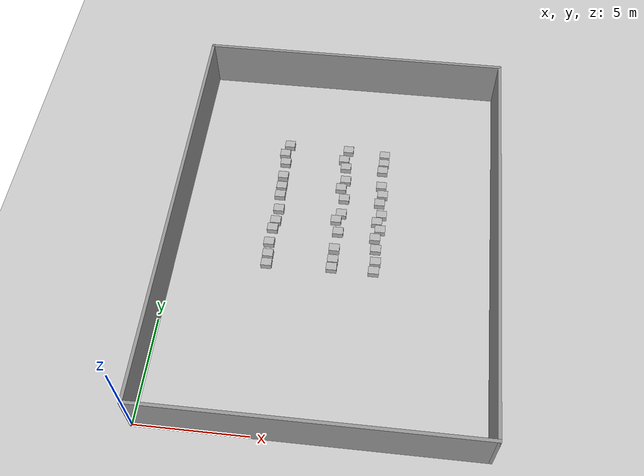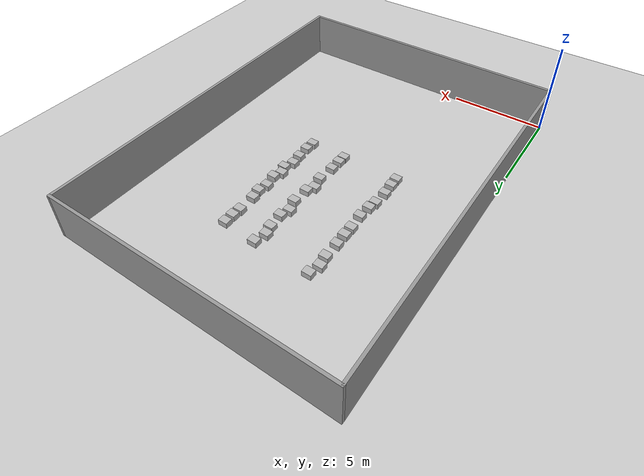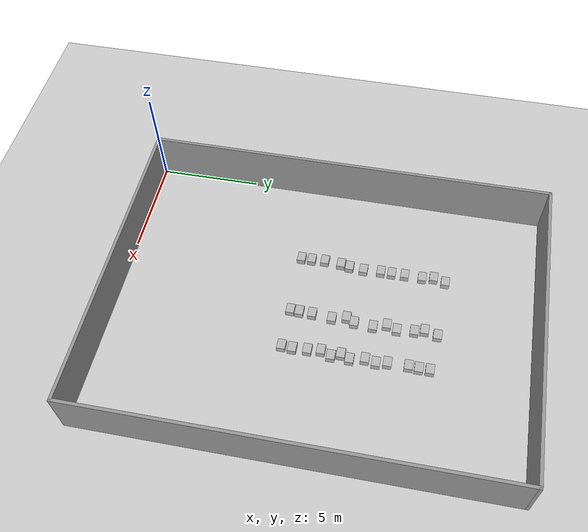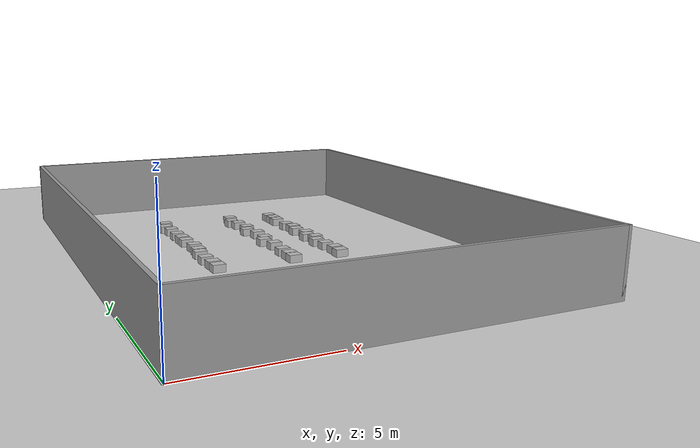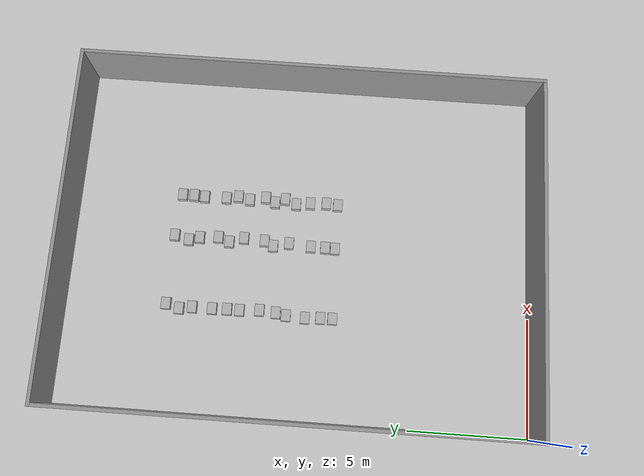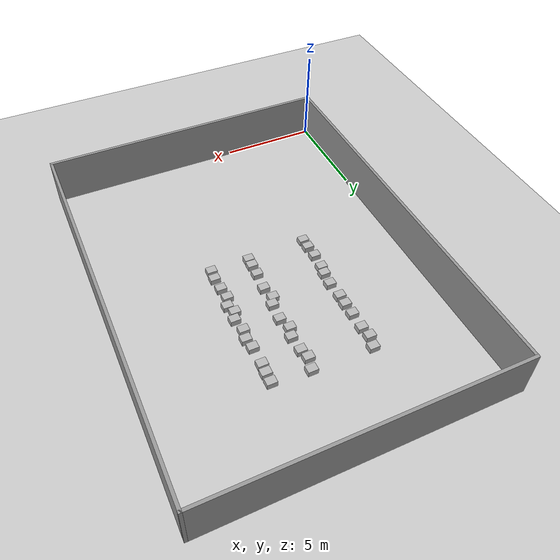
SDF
<sdf version="1.7">
 <world name="default">
  <light name="sun" type="directional">
   <pose>0 0 10 0 -0 0</pose>
   <diffuse>0.8 0.8 0.8 1</diffuse>
   <specular>0.2 0.2 0.2 1</specular>
   <attenuation>
    <range>1000</range>
    <constant>0.9</constant>
    <linear>0.01</linear>
    <quadratic>0.001</quadratic>
   </attenuation>
   <direction>-0.5 0.1 -0.9</direction>
   <spot><inner_angle>0</inner_angle><outer_angle>0</outer_angle><falloff>0</falloff></spot>
  </light>
  <model name="ground_plane">
   <pose>0 0 0 0 -0 1.57</pose>
   <static>1</static>
   <link name="link">
    <collision name="collision">
     <geometry><plane><normal>0 0 1</normal><size>100 100</size></plane></geometry>
     <surface>
      <contact><collide_bitmask>65535</collide_bitmask></contact>
      <friction><ode><mu>100</mu><mu2>50</mu2></ode></friction>
     </surface>
    </collision>
    <visual name="visual">
     <cast_shadows>0</cast_shadows>
     <geometry><plane><normal>0 0 1</normal><size>100 100</size></plane></geometry>
     <material>
      <script><uri>file://media/materials/scripts/gazebo.material</uri><name>Gazebo/Grey</name></script>
     </material>
    </visual>
   </link>
  </model>
  <gravity>0 0 -9.8</gravity>
  <magnetic_field>6e-06 2.3e-05 -4.2e-05</magnetic_field>
  <atmosphere type="adiabatic"/>
  <physics type="ode">
   <max_step_size>0.001</max_step_size>
   <real_time_factor>1</real_time_factor>
   <real_time_update_rate>1000</real_time_update_rate>
  </physics>
  <scene><ambient>0.4 0.4 0.4 1</ambient><background>0.7 0.7 0.7 1</background><shadows>1</shadows></scene>
  <audio><device>default</device></audio>
  <spherical_coordinates>
   <surface_model>EARTH_WGS84</surface_model>
   <latitude_deg>0</latitude_deg>
   <longitude_deg>0</longitude_deg>
   <elevation>0</elevation>
   <heading_deg>0</heading_deg>
  </spherical_coordinates>
  <model name="warehouse_fnal">
   <pose>7.5 10 0 0 -0 0</pose>
   <link name="Wall_10">
    <collision name="Wall_10_Collision">
     <geometry><box><size>15.15 0.15 2.5</size></box></geometry>
     <pose>0 0 1.25 0 -0 0</pose>
    </collision>
    <visual name="Wall_10_Visual">
     <pose>0 0 1.25 0 -0 0</pose>
     <geometry><box><size>15.15 0.15 2.5</size></box></geometry>
     <material>
      <script><uri>file://media/materials/scripts/gazebo.material</uri><name>Gazebo/Grey</name></script>
      <ambient>1 1 1 1</ambient>
     </material>
     <meta><layer>0</layer></meta>
    </visual>
    <pose>0 10 0 0 -0 3.14159</pose>
   </link>
   <link name="Wall_11">
    <collision name="Wall_11_Collision">
     <geometry><box><size>20.15 0.15 2.5</size></box></geometry>
     <pose>0 0 1.25 0 -0 0</pose>
    </collision>
    <visual name="Wall_11_Visual">
     <pose>0 0 1.25 0 -0 0</pose>
     <geometry><box><size>20.15 0.15 2.5</size></box></geometry>
     <material>
      <script><uri>file://media/materials/scripts/gazebo.material</uri><name>Gazebo/Grey</name></script>
      <ambient>1 1 1 1</ambient>
     </material>
     <meta><layer>0</layer></meta>
    </visual>
    <pose>-7.5 0 0 0 -0 -1.5708</pose>
   </link>
   <link name="Wall_8">
    <collision name="Wall_8_Collision">
     <geometry><box><size>15.15 0.15 2.5</size></box></geometry>
     <pose>0 0 1.25 0 -0 0</pose>
    </collision>
    <visual name="Wall_8_Visual">
     <pose>0 0 1.25 0 -0 0</pose>
     <geometry><box><size>15.15 0.15 2.5</size></box></geometry>
     <material>
      <script><uri>file://media/materials/scripts/gazebo.material</uri><name>Gazebo/Grey</name></script>
      <ambient>1 1 1 1</ambient>
     </material>
     <meta><layer>0</layer></meta>
    </visual>
    <pose>0 -10 0 0 -0 0</pose>
   </link>
   <link name="Wall_9">
    <collision name="Wall_9_Collision">
     <geometry><box><size>20.15 0.15 2.5</size></box></geometry>
     <pose>0 0 1.25 0 -0 0</pose>
    </collision>
    <visual name="Wall_9_Visual">
     <pose>0 0 1.25 0 -0 0</pose>
     <geometry><box><size>20.15 0.15 2.5</size></box></geometry>
     <material>
      <script><uri>file://media/materials/scripts/gazebo.material</uri><name>Gazebo/Grey</name></script>
      <ambient>1 1 1 1</ambient>
     </material>
     <meta><layer>0</layer></meta>
    </visual>
    <pose>7.5 0 0 0 -0 1.5708</pose>
   </link>
   <static>1</static>
  </model>
  <model name="cardboard_box">
   <pose>4.43149 8.39533 0.149 0 -0 0</pose>
   <link name="link">
    <inertial>
     <mass>2</mass>
     <inertia>
      <ixx>0.0416667</ixx>
      <ixy>0</ixy>
      <ixz>0</ixz>
      <iyy>0.0566667</iyy>
      <iyz>0</iyz>
      <izz>0.0683333</izz>
     </inertia>
    </inertial>
    <collision name="collision">
     <geometry><box><size>0.5 0.4 0.3</size></box></geometry>
     <surface>
      <friction><ode><mu>1</mu><mu2>1</mu2></ode></friction>
      <contact><ode><kp>1e+07</kp><kd>1</kd><min_depth>0.001</min_depth><max_vel>0.1</max_vel></ode></contact>
     </surface>
    </collision>
    <visual name="visual">
     <pose>0 0 -0.15 0 -0 0</pose>
     <geometry>
      <mesh><uri>model://cardboard_box/meshes/cardboard_box.dae</uri><scale>1.25932 1.00745 0.755591</scale></mesh>
     </geometry>
    </visual>
   </link>
  </model>
  <model name="cardboard_box_clone">
   <pose>4.42529 8.91075 0.149 0 -0 0</pose>
   <link name="link">
    <inertial>
     <mass>2</mass>
     <inertia>
      <ixx>0.0416667</ixx>
      <ixy>0</ixy>
      <ixz>0</ixz>
      <iyy>0.0566667</iyy>
      <iyz>0</iyz>
      <izz>0.0683333</izz>
     </inertia>
    </inertial>
    <collision name="collision">
     <geometry><box><size>0.5 0.4 0.3</size></box></geometry>
     <surface>
      <friction><ode><mu>1</mu><mu2>1</mu2></ode></friction>
      <contact><ode><kp>1e+07</kp><kd>1</kd><min_depth>0.001</min_depth><max_vel>0.1</max_vel></ode></contact>
     </surface>
    </collision>
    <visual name="visual">
     <pose>0 0 -0.15 0 -0 0</pose>
     <geometry>
      <mesh><uri>model://cardboard_box/meshes/cardboard_box.dae</uri><scale>1.25932 1.00745 0.755591</scale></mesh>
     </geometry>
    </visual>
   </link>
  </model>
  <model name="cardboard_box_clone_0">
   <pose>4.38559 9.57242 0.149 0 -0 0</pose>
   <link name="link">
    <inertial>
     <mass>2</mass>
     <inertia>
      <ixx>0.0416667</ixx>
      <ixy>0</ixy>
      <ixz>0</ixz>
      <iyy>0.0566667</iyy>
      <iyz>0</iyz>
      <izz>0.0683333</izz>
     </inertia>
    </inertial>
    <collision name="collision">
     <geometry><box><size>0.5 0.4 0.3</size></box></geometry>
     <surface>
      <friction><ode><mu>1</mu><mu2>1</mu2></ode></friction>
      <contact><ode><kp>1e+07</kp><kd>1</kd><min_depth>0.001</min_depth><max_vel>0.1</max_vel></ode></contact>
     </surface>
    </collision>
    <visual name="visual">
     <pose>0 0 -0.15 0 -0 0</pose>
     <geometry>
      <mesh><uri>model://cardboard_box/meshes/cardboard_box.dae</uri><scale>1.25932 1.00745 0.755591</scale></mesh>
     </geometry>
    </visual>
   </link>
  </model>
  <model name="cardboard_box_clone_1">
   <pose>4.4331 10.3926 0.149 0 -0 0</pose>
   <link name="link">
    <inertial>
     <mass>2</mass>
     <inertia>
      <ixx>0.0416667</ixx>
      <ixy>0</ixy>
      <ixz>0</ixz>
      <iyy>0.0566667</iyy>
      <iyz>0</iyz>
      <izz>0.0683333</izz>
     </inertia>
    </inertial>
    <collision name="collision">
     <geometry><box><size>0.5 0.4 0.3</size></box></geometry>
     <surface>
      <friction><ode><mu>1</mu><mu2>1</mu2></ode></friction>
      <contact><ode><kp>1e+07</kp><kd>1</kd><min_depth>0.001</min_depth><max_vel>0.1</max_vel></ode></contact>
     </surface>
    </collision>
    <visual name="visual">
     <pose>0 0 -0.15 0 -0 0</pose>
     <geometry>
      <mesh><uri>model://cardboard_box/meshes/cardboard_box.dae</uri><scale>1.25932 1.00745 0.755591</scale></mesh>
     </geometry>
    </visual>
   </link>
  </model>
  <model name="cardboard_box_clone_2">
   <pose>4.51999 10.8353 0.149 0 -0 0</pose>
   <link name="link">
    <inertial>
     <mass>2</mass>
     <inertia>
      <ixx>0.0416667</ixx>
      <ixy>0</ixy>
      <ixz>0</ixz>
      <iyy>0.0566667</iyy>
      <iyz>0</iyz>
      <izz>0.0683333</izz>
     </inertia>
    </inertial>
    <collision name="collision">
     <geometry><box><size>0.5 0.4 0.3</size></box></geometry>
     <surface>
      <friction><ode><mu>1</mu><mu2>1</mu2></ode></friction>
      <contact><ode><kp>1e+07</kp><kd>1</kd><min_depth>0.001</min_depth><max_vel>0.1</max_vel></ode></contact>
     </surface>
    </collision>
    <visual name="visual">
     <pose>0 0 -0.15 0 -0 0</pose>
     <geometry>
      <mesh><uri>model://cardboard_box/meshes/cardboard_box.dae</uri><scale>1.25932 1.00745 0.755591</scale></mesh>
     </geometry>
    </visual>
   </link>
  </model>
  <model name="cardboard_box_clone_3">
   <pose>4.57796 11.5407 0.149 0 -0 0</pose>
   <link name="link">
    <inertial>
     <mass>2</mass>
     <inertia>
      <ixx>0.0416667</ixx>
      <ixy>0</ixy>
      <ixz>0</ixz>
      <iyy>0.0566667</iyy>
      <iyz>0</iyz>
      <izz>0.0683333</izz>
     </inertia>
    </inertial>
    <collision name="collision">
     <geometry><box><size>0.5 0.4 0.3</size></box></geometry>
     <surface>
      <friction><ode><mu>1</mu><mu2>1</mu2></ode></friction>
      <contact><ode><kp>1e+07</kp><kd>1</kd><min_depth>0.001</min_depth><max_vel>0.1</max_vel></ode></contact>
     </surface>
    </collision>
    <visual name="visual">
     <pose>0 0 -0.15 0 -0 0</pose>
     <geometry>
      <mesh><uri>model://cardboard_box/meshes/cardboard_box.dae</uri><scale>1.25932 1.00745 0.755591</scale></mesh>
     </geometry>
    </visual>
   </link>
  </model>
  <model name="cardboard_box_clone_4">
   <pose>4.51597 12.3961 0.149 0 -0 0</pose>
   <link name="link">
    <inertial>
     <mass>2</mass>
     <inertia>
      <ixx>0.0416667</ixx>
      <ixy>0</ixy>
      <ixz>0</ixz>
      <iyy>0.0566667</iyy>
      <iyz>0</iyz>
      <izz>0.0683333</izz>
     </inertia>
    </inertial>
    <collision name="collision">
     <geometry><box><size>0.5 0.4 0.3</size></box></geometry>
     <surface>
      <friction><ode><mu>1</mu><mu2>1</mu2></ode></friction>
      <contact><ode><kp>1e+07</kp><kd>1</kd><min_depth>0.001</min_depth><max_vel>0.1</max_vel></ode></contact>
     </surface>
    </collision>
    <visual name="visual">
     <pose>0 0 -0.15 0 -0 0</pose>
     <geometry>
      <mesh><uri>model://cardboard_box/meshes/cardboard_box.dae</uri><scale>1.25932 1.00745 0.755591</scale></mesh>
     </geometry>
    </visual>
   </link>
  </model>
  <model name="cardboard_box_clone_5">
   <pose>4.52274 12.9338 0.149 0 -0 0</pose>
   <link name="link">
    <inertial>
     <mass>2</mass>
     <inertia>
      <ixx>0.0416667</ixx>
      <ixy>0</ixy>
      <ixz>0</ixz>
      <iyy>0.0566667</iyy>
      <iyz>0</iyz>
      <izz>0.0683333</izz>
     </inertia>
    </inertial>
    <collision name="collision">
     <geometry><box><size>0.5 0.4 0.3</size></box></geometry>
     <surface>
      <friction><ode><mu>1</mu><mu2>1</mu2></ode></friction>
      <contact><ode><kp>1e+07</kp><kd>1</kd><min_depth>0.001</min_depth><max_vel>0.1</max_vel></ode></contact>
     </surface>
    </collision>
    <visual name="visual">
     <pose>0 0 -0.15 0 -0 0</pose>
     <geometry>
      <mesh><uri>model://cardboard_box/meshes/cardboard_box.dae</uri><scale>1.25932 1.00745 0.755591</scale></mesh>
     </geometry>
    </visual>
   </link>
  </model>
  <model name="cardboard_box_clone_6">
   <pose>4.50727 13.5777 0.149 0 -0 0</pose>
   <link name="link">
    <inertial>
     <mass>2</mass>
     <inertia>
      <ixx>0.0416667</ixx>
      <ixy>0</ixy>
      <ixz>0</ixz>
      <iyy>0.0566667</iyy>
      <iyz>0</iyz>
      <izz>0.0683333</izz>
     </inertia>
    </inertial>
    <collision name="collision">
     <geometry><box><size>0.5 0.4 0.3</size></box></geometry>
     <surface>
      <friction><ode><mu>1</mu><mu2>1</mu2></ode></friction>
      <contact><ode><kp>1e+07</kp><kd>1</kd><min_depth>0.001</min_depth><max_vel>0.1</max_vel></ode></contact>
     </surface>
    </collision>
    <visual name="visual">
     <pose>0 0 -0.15 0 -0 0</pose>
     <geometry>
      <mesh><uri>model://cardboard_box/meshes/cardboard_box.dae</uri><scale>1.25932 1.00745 0.755591</scale></mesh>
     </geometry>
    </visual>
   </link>
  </model>
  <model name="cardboard_box_clone_7">
   <pose>4.51519 14.4402 0.149 0 -0 0</pose>
   <link name="link">
    <inertial>
     <mass>2</mass>
     <inertia>
      <ixx>0.0416667</ixx>
      <ixy>0</ixy>
      <ixz>0</ixz>
      <iyy>0.0566667</iyy>
      <iyz>0</iyz>
      <izz>0.0683333</izz>
     </inertia>
    </inertial>
    <collision name="collision">
     <geometry><box><size>0.5 0.4 0.3</size></box></geometry>
     <surface>
      <friction><ode><mu>1</mu><mu2>1</mu2></ode></friction>
      <contact><ode><kp>1e+07</kp><kd>1</kd><min_depth>0.001</min_depth><max_vel>0.1</max_vel></ode></contact>
     </surface>
    </collision>
    <visual name="visual">
     <pose>0 0 -0.15 0 -0 0</pose>
     <geometry>
      <mesh><uri>model://cardboard_box/meshes/cardboard_box.dae</uri><scale>1.25932 1.00745 0.755591</scale></mesh>
     </geometry>
    </visual>
   </link>
  </model>
  <model name="cardboard_box_clone_8">
   <pose>4.42422 14.9957 0.149 0 -0 0</pose>
   <link name="link">
    <inertial>
     <mass>2</mass>
     <inertia>
      <ixx>0.0416667</ixx>
      <ixy>0</ixy>
      <ixz>0</ixz>
      <iyy>0.0566667</iyy>
      <iyz>0</iyz>
      <izz>0.0683333</izz>
     </inertia>
    </inertial>
    <collision name="collision">
     <geometry><box><size>0.5 0.4 0.3</size></box></geometry>
     <surface>
      <friction><ode><mu>1</mu><mu2>1</mu2></ode></friction>
      <contact><ode><kp>1e+07</kp><kd>1</kd><min_depth>0.001</min_depth><max_vel>0.1</max_vel></ode></contact>
     </surface>
    </collision>
    <visual name="visual">
     <pose>0 0 -0.15 0 -0 0</pose>
     <geometry>
      <mesh><uri>model://cardboard_box/meshes/cardboard_box.dae</uri><scale>1.25932 1.00745 0.755591</scale></mesh>
     </geometry>
    </visual>
   </link>
  </model>
  <model name="cardboard_box_clone_9">
   <pose>4.59192 15.5767 0.149 0 -0 0</pose>
   <link name="link">
    <inertial>
     <mass>2</mass>
     <inertia>
      <ixx>0.0416667</ixx>
      <ixy>0</ixy>
      <ixz>0</ixz>
      <iyy>0.0566667</iyy>
      <iyz>0</iyz>
      <izz>0.0683333</izz>
     </inertia>
    </inertial>
    <collision name="collision">
     <geometry><box><size>0.5 0.4 0.3</size></box></geometry>
     <surface>
      <friction><ode><mu>1</mu><mu2>1</mu2></ode></friction>
      <contact><ode><kp>1e+07</kp><kd>1</kd><min_depth>0.001</min_depth><max_vel>0.1</max_vel></ode></contact>
     </surface>
    </collision>
    <visual name="visual">
     <pose>0 0 -0.15 0 -0 0</pose>
     <geometry>
      <mesh><uri>model://cardboard_box/meshes/cardboard_box.dae</uri><scale>1.25932 1.00745 0.755591</scale></mesh>
     </geometry>
    </visual>
   </link>
  </model>
  <model name="cardboard_box_clone_10">
   <pose>7.5972 14.4243 0.149 0 -0 0</pose>
   <link name="link">
    <inertial>
     <mass>2</mass>
     <inertia>
      <ixx>0.0416667</ixx>
      <ixy>0</ixy>
      <ixz>0</ixz>
      <iyy>0.0566667</iyy>
      <iyz>0</iyz>
      <izz>0.0683333</izz>
     </inertia>
    </inertial>
    <collision name="collision">
     <geometry><box><size>0.5 0.4 0.3</size></box></geometry>
     <surface>
      <friction><ode><mu>1</mu><mu2>1</mu2></ode></friction>
      <contact><ode><kp>1e+07</kp><kd>1</kd><min_depth>0.001</min_depth><max_vel>0.1</max_vel></ode></contact>
     </surface>
    </collision>
    <visual name="visual">
     <pose>0 0 -0.15 0 -0 0</pose>
     <geometry>
      <mesh><uri>model://cardboard_box/meshes/cardboard_box.dae</uri><scale>1.25932 1.00745 0.755591</scale></mesh>
     </geometry>
    </visual>
   </link>
  </model>
  <model name="cardboard_box_clone_11">
   <pose>7.46137 14.8956 0.149 0 -0 0</pose>
   <link name="link">
    <inertial>
     <mass>2</mass>
     <inertia>
      <ixx>0.0416667</ixx>
      <ixy>0</ixy>
      <ixz>0</ixz>
      <iyy>0.0566667</iyy>
      <iyz>0</iyz>
      <izz>0.0683333</izz>
     </inertia>
    </inertial>
    <collision name="collision">
     <geometry><box><size>0.5 0.4 0.3</size></box></geometry>
     <surface>
      <friction><ode><mu>1</mu><mu2>1</mu2></ode></friction>
      <contact><ode><kp>1e+07</kp><kd>1</kd><min_depth>0.001</min_depth><max_vel>0.1</max_vel></ode></contact>
     </surface>
    </collision>
    <visual name="visual">
     <pose>0 0 -0.15 0 -0 0</pose>
     <geometry>
      <mesh><uri>model://cardboard_box/meshes/cardboard_box.dae</uri><scale>1.25932 1.00745 0.755591</scale></mesh>
     </geometry>
    </visual>
   </link>
  </model>
  <model name="cardboard_box_clone_12">
   <pose>7.62638 15.5251 0.149 0 -0 0</pose>
   <link name="link">
    <inertial>
     <mass>2</mass>
     <inertia>
      <ixx>0.0416667</ixx>
      <ixy>0</ixy>
      <ixz>0</ixz>
      <iyy>0.0566667</iyy>
      <iyz>0</iyz>
      <izz>0.0683333</izz>
     </inertia>
    </inertial>
    <collision name="collision">
     <geometry><box><size>0.5 0.4 0.3</size></box></geometry>
     <surface>
      <friction><ode><mu>1</mu><mu2>1</mu2></ode></friction>
      <contact><ode><kp>1e+07</kp><kd>1</kd><min_depth>0.001</min_depth><max_vel>0.1</max_vel></ode></contact>
     </surface>
    </collision>
    <visual name="visual">
     <pose>0 0 -0.15 0 -0 0</pose>
     <geometry>
      <mesh><uri>model://cardboard_box/meshes/cardboard_box.dae</uri><scale>1.25932 1.00745 0.755591</scale></mesh>
     </geometry>
    </visual>
   </link>
  </model>
  <model name="cardboard_box_clone_13">
   <pose>7.66571 13.6032 0.149 0 -0 0</pose>
   <link name="link">
    <inertial>
     <mass>2</mass>
     <inertia>
      <ixx>0.0416667</ixx>
      <ixy>0</ixy>
      <ixz>0</ixz>
      <iyy>0.0566667</iyy>
      <iyz>0</iyz>
      <izz>0.0683333</izz>
     </inertia>
    </inertial>
    <collision name="collision">
     <geometry><box><size>0.5 0.4 0.3</size></box></geometry>
     <surface>
      <friction><ode><mu>1</mu><mu2>1</mu2></ode></friction>
      <contact><ode><kp>1e+07</kp><kd>1</kd><min_depth>0.001</min_depth><max_vel>0.1</max_vel></ode></contact>
     </surface>
    </collision>
    <visual name="visual">
     <pose>0 0 -0.15 0 -0 0</pose>
     <geometry>
      <mesh><uri>model://cardboard_box/meshes/cardboard_box.dae</uri><scale>1.25932 1.00745 0.755591</scale></mesh>
     </geometry>
    </visual>
   </link>
  </model>
  <model name="cardboard_box_clone_14">
   <pose>7.48894 13.1111 0.149 0 -0 0</pose>
   <link name="link">
    <inertial>
     <mass>2</mass>
     <inertia>
      <ixx>0.0416667</ixx>
      <ixy>0</ixy>
      <ixz>0</ixz>
      <iyy>0.0566667</iyy>
      <iyz>0</iyz>
      <izz>0.0683333</izz>
     </inertia>
    </inertial>
    <collision name="collision">
     <geometry><box><size>0.5 0.4 0.3</size></box></geometry>
     <surface>
      <friction><ode><mu>1</mu><mu2>1</mu2></ode></friction>
      <contact><ode><kp>1e+07</kp><kd>1</kd><min_depth>0.001</min_depth><max_vel>0.1</max_vel></ode></contact>
     </surface>
    </collision>
    <visual name="visual">
     <pose>0 0 -0.15 0 -0 0</pose>
     <geometry>
      <mesh><uri>model://cardboard_box/meshes/cardboard_box.dae</uri><scale>1.25932 1.00745 0.755591</scale></mesh>
     </geometry>
    </visual>
   </link>
  </model>
  <model name="cardboard_box_clone_15">
   <pose>7.70269 12.4781 0.149 0 -0 0</pose>
   <link name="link">
    <inertial>
     <mass>2</mass>
     <inertia>
      <ixx>0.0416667</ixx>
      <ixy>0</ixy>
      <ixz>0</ixz>
      <iyy>0.0566667</iyy>
      <iyz>0</iyz>
      <izz>0.0683333</izz>
     </inertia>
    </inertial>
    <collision name="collision">
     <geometry><box><size>0.5 0.4 0.3</size></box></geometry>
     <surface>
      <friction><ode><mu>1</mu><mu2>1</mu2></ode></friction>
      <contact><ode><kp>1e+07</kp><kd>1</kd><min_depth>0.001</min_depth><max_vel>0.1</max_vel></ode></contact>
     </surface>
    </collision>
    <visual name="visual">
     <pose>0 0 -0.15 0 -0 0</pose>
     <geometry>
      <mesh><uri>model://cardboard_box/meshes/cardboard_box.dae</uri><scale>1.25932 1.00745 0.755591</scale></mesh>
     </geometry>
    </visual>
   </link>
  </model>
  <model name="cardboard_box_clone_16">
   <pose>7.64697 11.5723 0.149 0 -0 -0.00205</pose>
   <link name="link">
    <inertial>
     <mass>2</mass>
     <inertia>
      <ixx>0.0416667</ixx>
      <ixy>0</ixy>
      <ixz>0</ixz>
      <iyy>0.0566667</iyy>
      <iyz>0</iyz>
      <izz>0.0683333</izz>
     </inertia>
    </inertial>
    <collision name="collision">
     <geometry><box><size>0.5 0.4 0.3</size></box></geometry>
     <surface>
      <friction><ode><mu>1</mu><mu2>1</mu2></ode></friction>
      <contact><ode><kp>1e+07</kp><kd>1</kd><min_depth>0.001</min_depth><max_vel>0.1</max_vel></ode></contact>
     </surface>
    </collision>
    <visual name="visual">
     <pose>0 0 -0.15 0 -0 0</pose>
     <geometry>
      <mesh><uri>model://cardboard_box/meshes/cardboard_box.dae</uri><scale>1.25932 1.00745 0.755591</scale></mesh>
     </geometry>
    </visual>
   </link>
  </model>
  <model name="cardboard_box_clone_17">
   <pose>7.43684 11.1735 0.149 0 0 -0.002051</pose>
   <link name="link">
    <inertial>
     <mass>2</mass>
     <inertia>
      <ixx>0.0416667</ixx>
      <ixy>0</ixy>
      <ixz>0</ixz>
      <iyy>0.0566667</iyy>
      <iyz>0</iyz>
      <izz>0.0683333</izz>
     </inertia>
    </inertial>
    <collision name="collision">
     <geometry><box><size>0.5 0.4 0.3</size></box></geometry>
     <surface>
      <friction><ode><mu>1</mu><mu2>1</mu2></ode></friction>
      <contact><ode><kp>1e+07</kp><kd>1</kd><min_depth>0.001</min_depth><max_vel>0.1</max_vel></ode></contact>
     </surface>
    </collision>
    <visual name="visual">
     <pose>0 0 -0.15 0 -0 0</pose>
     <geometry>
      <mesh><uri>model://cardboard_box/meshes/cardboard_box.dae</uri><scale>1.25932 1.00745 0.755591</scale></mesh>
     </geometry>
    </visual>
   </link>
  </model>
  <model name="cardboard_box_clone_18">
   <pose>7.60195 10.4918 0.149 0 -0 0</pose>
   <link name="link">
    <inertial>
     <mass>2</mass>
     <inertia>
      <ixx>0.0416667</ixx>
      <ixy>0</ixy>
      <ixz>0</ixz>
      <iyy>0.0566667</iyy>
      <iyz>0</iyz>
      <izz>0.0683333</izz>
     </inertia>
    </inertial>
    <collision name="collision">
     <geometry><box><size>0.5 0.4 0.3</size></box></geometry>
     <surface>
      <friction><ode><mu>1</mu><mu2>1</mu2></ode></friction>
      <contact><ode><kp>1e+07</kp><kd>1</kd><min_depth>0.001</min_depth><max_vel>0.1</max_vel></ode></contact>
     </surface>
    </collision>
    <visual name="visual">
     <pose>0 0 -0.15 0 -0 0</pose>
     <geometry>
      <mesh><uri>model://cardboard_box/meshes/cardboard_box.dae</uri><scale>1.25932 1.00745 0.755591</scale></mesh>
     </geometry>
    </visual>
   </link>
  </model>
  <model name="cardboard_box_clone_19">
   <pose>7.50148 8.47023 0.149 0 -0 0</pose>
   <link name="link">
    <inertial>
     <mass>2</mass>
     <inertia>
      <ixx>0.0416667</ixx>
      <ixy>0</ixy>
      <ixz>0</ixz>
      <iyy>0.0566667</iyy>
      <iyz>0</iyz>
      <izz>0.0683333</izz>
     </inertia>
    </inertial>
    <collision name="collision">
     <geometry><box><size>0.5 0.4 0.3</size></box></geometry>
     <surface>
      <friction><ode><mu>1</mu><mu2>1</mu2></ode></friction>
      <contact><ode><kp>1e+07</kp><kd>1</kd><min_depth>0.001</min_depth><max_vel>0.1</max_vel></ode></contact>
     </surface>
    </collision>
    <visual name="visual">
     <pose>0 0 -0.15 0 -0 0</pose>
     <geometry>
      <mesh><uri>model://cardboard_box/meshes/cardboard_box.dae</uri><scale>1.25932 1.00745 0.755591</scale></mesh>
     </geometry>
    </visual>
   </link>
  </model>
  <model name="cardboard_box_clone_20">
   <pose>7.51788 8.90574 0.149 0 -0 0</pose>
   <link name="link">
    <inertial>
     <mass>2</mass>
     <inertia>
      <ixx>0.0416667</ixx>
      <ixy>0</ixy>
      <ixz>0</ixz>
      <iyy>0.0566667</iyy>
      <iyz>0</iyz>
      <izz>0.0683333</izz>
     </inertia>
    </inertial>
    <collision name="collision">
     <geometry><box><size>0.5 0.4 0.3</size></box></geometry>
     <surface>
      <friction><ode><mu>1</mu><mu2>1</mu2></ode></friction>
      <contact><ode><kp>1e+07</kp><kd>1</kd><min_depth>0.001</min_depth><max_vel>0.1</max_vel></ode></contact>
     </surface>
    </collision>
    <visual name="visual">
     <pose>0 0 -0.15 0 -0 0</pose>
     <geometry>
      <mesh><uri>model://cardboard_box/meshes/cardboard_box.dae</uri><scale>1.25932 1.00745 0.755591</scale></mesh>
     </geometry>
    </visual>
   </link>
  </model>
  <model name="cardboard_box_clone_21">
   <pose>7.52176 9.53019 0.149 0 -0 0</pose>
   <link name="link">
    <inertial>
     <mass>2</mass>
     <inertia>
      <ixx>0.0416667</ixx>
      <ixy>0</ixy>
      <ixz>0</ixz>
      <iyy>0.0566667</iyy>
      <iyz>0</iyz>
      <izz>0.0683333</izz>
     </inertia>
    </inertial>
    <collision name="collision">
     <geometry><box><size>0.5 0.4 0.3</size></box></geometry>
     <surface>
      <friction><ode><mu>1</mu><mu2>1</mu2></ode></friction>
      <contact><ode><kp>1e+07</kp><kd>1</kd><min_depth>0.001</min_depth><max_vel>0.1</max_vel></ode></contact>
     </surface>
    </collision>
    <visual name="visual">
     <pose>0 0 -0.15 0 -0 0</pose>
     <geometry>
      <mesh><uri>model://cardboard_box/meshes/cardboard_box.dae</uri><scale>1.25932 1.00745 0.755591</scale></mesh>
     </geometry>
    </visual>
   </link>
  </model>
  <model name="cardboard_box_clone_19_clone">
   <pose>9.48508 8.46307 0.149 0 -0 0</pose>
   <link name="link">
    <inertial>
     <mass>2</mass>
     <inertia>
      <ixx>0.0416667</ixx>
      <ixy>0</ixy>
      <ixz>0</ixz>
      <iyy>0.0566667</iyy>
      <iyz>0</iyz>
      <izz>0.0683333</izz>
     </inertia>
    </inertial>
    <collision name="collision">
     <geometry><box><size>0.5 0.4 0.3</size></box></geometry>
     <surface>
      <friction><ode><mu>1</mu><mu2>1</mu2></ode></friction>
      <contact><ode><kp>1e+07</kp><kd>1</kd><min_depth>0.001</min_depth><max_vel>0.1</max_vel></ode></contact>
     </surface>
    </collision>
    <visual name="visual">
     <pose>0 0 -0.15 0 -0 0</pose>
     <geometry>
      <mesh><uri>model://cardboard_box/meshes/cardboard_box.dae</uri><scale>1.25932 1.00745 0.755591</scale></mesh>
     </geometry>
    </visual>
   </link>
  </model>
  <model name="cardboard_box_clone_19_clone_0">
   <pose>9.5284 8.97752 0.149 0 -0 0</pose>
   <link name="link">
    <inertial>
     <mass>2</mass>
     <inertia>
      <ixx>0.0416667</ixx>
      <ixy>0</ixy>
      <ixz>0</ixz>
      <iyy>0.0566667</iyy>
      <iyz>0</iyz>
      <izz>0.0683333</izz>
     </inertia>
    </inertial>
    <collision name="collision">
     <geometry><box><size>0.5 0.4 0.3</size></box></geometry>
     <surface>
      <friction><ode><mu>1</mu><mu2>1</mu2></ode></friction>
      <contact><ode><kp>1e+07</kp><kd>1</kd><min_depth>0.001</min_depth><max_vel>0.1</max_vel></ode></contact>
     </surface>
    </collision>
    <visual name="visual">
     <pose>0 0 -0.15 0 -0 0</pose>
     <geometry>
      <mesh><uri>model://cardboard_box/meshes/cardboard_box.dae</uri><scale>1.25932 1.00745 0.755591</scale></mesh>
     </geometry>
    </visual>
   </link>
  </model>
  <model name="cardboard_box_clone_19_clone_1">
   <pose>9.48531 9.68296 0.149 0 -0 0</pose>
   <link name="link">
    <inertial>
     <mass>2</mass>
     <inertia>
      <ixx>0.0416667</ixx>
      <ixy>0</ixy>
      <ixz>0</ixz>
      <iyy>0.0566667</iyy>
      <iyz>0</iyz>
      <izz>0.0683333</izz>
     </inertia>
    </inertial>
    <collision name="collision">
     <geometry><box><size>0.5 0.4 0.3</size></box></geometry>
     <surface>
      <friction><ode><mu>1</mu><mu2>1</mu2></ode></friction>
      <contact><ode><kp>1e+07</kp><kd>1</kd><min_depth>0.001</min_depth><max_vel>0.1</max_vel></ode></contact>
     </surface>
    </collision>
    <visual name="visual">
     <pose>0 0 -0.15 0 -0 0</pose>
     <geometry>
      <mesh><uri>model://cardboard_box/meshes/cardboard_box.dae</uri><scale>1.25932 1.00745 0.755591</scale></mesh>
     </geometry>
    </visual>
   </link>
  </model>
  <model name="cardboard_box_clone_19_clone_2">
   <pose>9.40467 10.3076 0.149 0 -0 0</pose>
   <link name="link">
    <inertial>
     <mass>2</mass>
     <inertia>
      <ixx>0.0416667</ixx>
      <ixy>0</ixy>
      <ixz>0</ixz>
      <iyy>0.0566667</iyy>
      <iyz>0</iyz>
      <izz>0.0683333</izz>
     </inertia>
    </inertial>
    <collision name="collision">
     <geometry><box><size>0.5 0.4 0.3</size></box></geometry>
     <surface>
      <friction><ode><mu>1</mu><mu2>1</mu2></ode></friction>
      <contact><ode><kp>1e+07</kp><kd>1</kd><min_depth>0.001</min_depth><max_vel>0.1</max_vel></ode></contact>
     </surface>
    </collision>
    <visual name="visual">
     <pose>0 0 -0.15 0 -0 0</pose>
     <geometry>
      <mesh><uri>model://cardboard_box/meshes/cardboard_box.dae</uri><scale>1.25932 1.00745 0.755591</scale></mesh>
     </geometry>
    </visual>
   </link>
  </model>
  <model name="cardboard_box_clone_19_clone_3">
   <pose>9.60543 10.8032 0.149 0 -0 0</pose>
   <link name="link">
    <inertial>
     <mass>2</mass>
     <inertia>
      <ixx>0.0416667</ixx>
      <ixy>0</ixy>
      <ixz>0</ixz>
      <iyy>0.0566667</iyy>
      <iyz>0</iyz>
      <izz>0.0683333</izz>
     </inertia>
    </inertial>
    <collision name="collision">
     <geometry><box><size>0.5 0.4 0.3</size></box></geometry>
     <surface>
      <friction><ode><mu>1</mu><mu2>1</mu2></ode></friction>
      <contact><ode><kp>1e+07</kp><kd>1</kd><min_depth>0.001</min_depth><max_vel>0.1</max_vel></ode></contact>
     </surface>
    </collision>
    <visual name="visual">
     <pose>0 0 -0.15 0 -0 0</pose>
     <geometry>
      <mesh><uri>model://cardboard_box/meshes/cardboard_box.dae</uri><scale>1.25932 1.00745 0.755591</scale></mesh>
     </geometry>
    </visual>
   </link>
  </model>
  <model name="cardboard_box_clone_19_clone_4">
   <pose>9.42214 11.2451 0.149 0 -0 0</pose>
   <link name="link">
    <inertial>
     <mass>2</mass>
     <inertia>
      <ixx>0.0416667</ixx>
      <ixy>0</ixy>
      <ixz>0</ixz>
      <iyy>0.0566667</iyy>
      <iyz>0</iyz>
      <izz>0.0683333</izz>
     </inertia>
    </inertial>
    <collision name="collision">
     <geometry><box><size>0.5 0.4 0.3</size></box></geometry>
     <surface>
      <friction><ode><mu>1</mu><mu2>1</mu2></ode></friction>
      <contact><ode><kp>1e+07</kp><kd>1</kd><min_depth>0.001</min_depth><max_vel>0.1</max_vel></ode></contact>
     </surface>
    </collision>
    <visual name="visual">
     <pose>0 0 -0.15 0 -0 0</pose>
     <geometry>
      <mesh><uri>model://cardboard_box/meshes/cardboard_box.dae</uri><scale>1.25932 1.00745 0.755591</scale></mesh>
     </geometry>
    </visual>
   </link>
  </model>
  <model name="cardboard_box_clone_19_clone_5">
   <pose>9.61058 11.675 0.149 0 -0 0</pose>
   <link name="link">
    <inertial>
     <mass>2</mass>
     <inertia>
      <ixx>0.0416667</ixx>
      <ixy>0</ixy>
      <ixz>0</ixz>
      <iyy>0.0566667</iyy>
      <iyz>0</iyz>
      <izz>0.0683333</izz>
     </inertia>
    </inertial>
    <collision name="collision">
     <geometry><box><size>0.5 0.4 0.3</size></box></geometry>
     <surface>
      <friction><ode><mu>1</mu><mu2>1</mu2></ode></friction>
      <contact><ode><kp>1e+07</kp><kd>1</kd><min_depth>0.001</min_depth><max_vel>0.1</max_vel></ode></contact>
     </surface>
    </collision>
    <visual name="visual">
     <pose>0 0 -0.15 0 -0 0</pose>
     <geometry>
      <mesh><uri>model://cardboard_box/meshes/cardboard_box.dae</uri><scale>1.25932 1.00745 0.755591</scale></mesh>
     </geometry>
    </visual>
   </link>
  </model>
  <model name="cardboard_box_clone_19_clone_6">
   <pose>9.46588 12.374 0.149 0 -0 0</pose>
   <link name="link">
    <inertial>
     <mass>2</mass>
     <inertia>
      <ixx>0.0416667</ixx>
      <ixy>0</ixy>
      <ixz>0</ixz>
      <iyy>0.0566667</iyy>
      <iyz>0</iyz>
      <izz>0.0683333</izz>
     </inertia>
    </inertial>
    <collision name="collision">
     <geometry><box><size>0.5 0.4 0.3</size></box></geometry>
     <surface>
      <friction><ode><mu>1</mu><mu2>1</mu2></ode></friction>
      <contact><ode><kp>1e+07</kp><kd>1</kd><min_depth>0.001</min_depth><max_vel>0.1</max_vel></ode></contact>
     </surface>
    </collision>
    <visual name="visual">
     <pose>0 0 -0.15 0 -0 0</pose>
     <geometry>
      <mesh><uri>model://cardboard_box/meshes/cardboard_box.dae</uri><scale>1.25932 1.00745 0.755591</scale></mesh>
     </geometry>
    </visual>
   </link>
  </model>
  <model name="cardboard_box_clone_19_clone_7">
   <pose>9.57588 12.8899 0.149 0 -0 0</pose>
   <link name="link">
    <inertial>
     <mass>2</mass>
     <inertia>
      <ixx>0.0416667</ixx>
      <ixy>0</ixy>
      <ixz>0</ixz>
      <iyy>0.0566667</iyy>
      <iyz>0</iyz>
      <izz>0.0683333</izz>
     </inertia>
    </inertial>
    <collision name="collision">
     <geometry><box><size>0.5 0.4 0.3</size></box></geometry>
     <surface>
      <friction><ode><mu>1</mu><mu2>1</mu2></ode></friction>
      <contact><ode><kp>1e+07</kp><kd>1</kd><min_depth>0.001</min_depth><max_vel>0.1</max_vel></ode></contact>
     </surface>
    </collision>
    <visual name="visual">
     <pose>0 0 -0.15 0 -0 0</pose>
     <geometry>
      <mesh><uri>model://cardboard_box/meshes/cardboard_box.dae</uri><scale>1.25932 1.00745 0.755591</scale></mesh>
     </geometry>
    </visual>
   </link>
  </model>
  <model name="cardboard_box_clone_19_clone_8">
   <pose>9.47854 13.4175 0.149 0 -0 0</pose>
   <link name="link">
    <inertial>
     <mass>2</mass>
     <inertia>
      <ixx>0.0416667</ixx>
      <ixy>0</ixy>
      <ixz>0</ixz>
      <iyy>0.0566667</iyy>
      <iyz>0</iyz>
      <izz>0.0683333</izz>
     </inertia>
    </inertial>
    <collision name="collision">
     <geometry><box><size>0.5 0.4 0.3</size></box></geometry>
     <surface>
      <friction><ode><mu>1</mu><mu2>1</mu2></ode></friction>
      <contact><ode><kp>1e+07</kp><kd>1</kd><min_depth>0.001</min_depth><max_vel>0.1</max_vel></ode></contact>
     </surface>
    </collision>
    <visual name="visual">
     <pose>0 0 -0.15 0 -0 0</pose>
     <geometry>
      <mesh><uri>model://cardboard_box/meshes/cardboard_box.dae</uri><scale>1.25932 1.00745 0.755591</scale></mesh>
     </geometry>
    </visual>
   </link>
  </model>
  <model name="cardboard_box_clone_19_clone_9">
   <pose>9.4612 14.3883 0.149 0 -0 0</pose>
   <link name="link">
    <inertial>
     <mass>2</mass>
     <inertia>
      <ixx>0.0416667</ixx>
      <ixy>0</ixy>
      <ixz>0</ixz>
      <iyy>0.0566667</iyy>
      <iyz>0</iyz>
      <izz>0.0683333</izz>
     </inertia>
    </inertial>
    <collision name="collision">
     <geometry><box><size>0.5 0.4 0.3</size></box></geometry>
     <surface>
      <friction><ode><mu>1</mu><mu2>1</mu2></ode></friction>
      <contact><ode><kp>1e+07</kp><kd>1</kd><min_depth>0.001</min_depth><max_vel>0.1</max_vel></ode></contact>
     </surface>
    </collision>
    <visual name="visual">
     <pose>0 0 -0.15 0 -0 0</pose>
     <geometry>
      <mesh><uri>model://cardboard_box/meshes/cardboard_box.dae</uri><scale>1.25932 1.00745 0.755591</scale></mesh>
     </geometry>
    </visual>
   </link>
  </model>
  <model name="cardboard_box_clone_19_clone_10">
   <pose>9.49708 14.8613 0.149 0 -0 0</pose>
   <link name="link">
    <inertial>
     <mass>2</mass>
     <inertia>
      <ixx>0.0416667</ixx>
      <ixy>0</ixy>
      <ixz>0</ixz>
      <iyy>0.0566667</iyy>
      <iyz>0</iyz>
      <izz>0.0683333</izz>
     </inertia>
    </inertial>
    <collision name="collision">
     <geometry><box><size>0.5 0.4 0.3</size></box></geometry>
     <surface>
      <friction><ode><mu>1</mu><mu2>1</mu2></ode></friction>
      <contact><ode><kp>1e+07</kp><kd>1</kd><min_depth>0.001</min_depth><max_vel>0.1</max_vel></ode></contact>
     </surface>
    </collision>
    <visual name="visual">
     <pose>0 0 -0.15 0 -0 0</pose>
     <geometry>
      <mesh><uri>model://cardboard_box/meshes/cardboard_box.dae</uri><scale>1.25932 1.00745 0.755591</scale></mesh>
     </geometry>
    </visual>
   </link>
  </model>
  <model name="cardboard_box_clone_19_clone_11">
   <pose>9.49363 15.3716 0.149 0 -0 0</pose>
   <link name="link">
    <inertial>
     <mass>2</mass>
     <inertia>
      <ixx>0.0416667</ixx>
      <ixy>0</ixy>
      <ixz>0</ixz>
      <iyy>0.0566667</iyy>
      <iyz>0</iyz>
      <izz>0.0683333</izz>
     </inertia>
    </inertial>
    <collision name="collision">
     <geometry><box><size>0.5 0.4 0.3</size></box></geometry>
     <surface>
      <friction><ode><mu>1</mu><mu2>1</mu2></ode></friction>
      <contact><ode><kp>1e+07</kp><kd>1</kd><min_depth>0.001</min_depth><max_vel>0.1</max_vel></ode></contact>
     </surface>
    </collision>
    <visual name="visual">
     <pose>0 0 -0.15 0 -0 0</pose>
     <geometry>
      <mesh><uri>model://cardboard_box/meshes/cardboard_box.dae</uri><scale>1.25932 1.00745 0.755591</scale></mesh>
     </geometry>
    </visual>
   </link>
  </model>
 </world>
</sdf>
